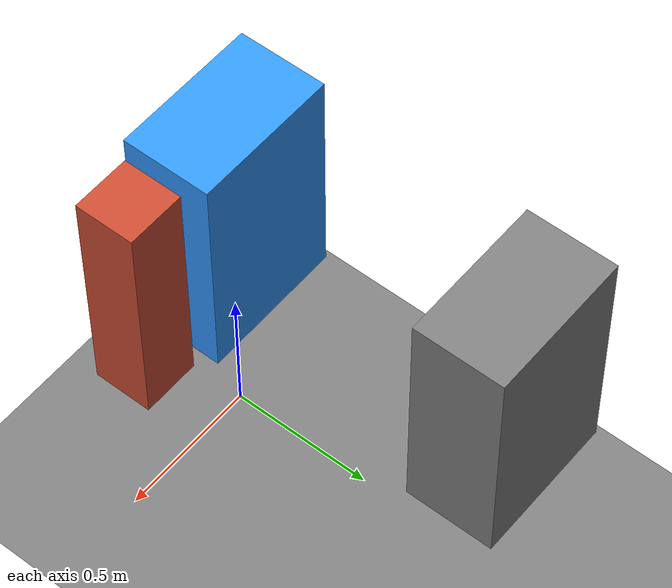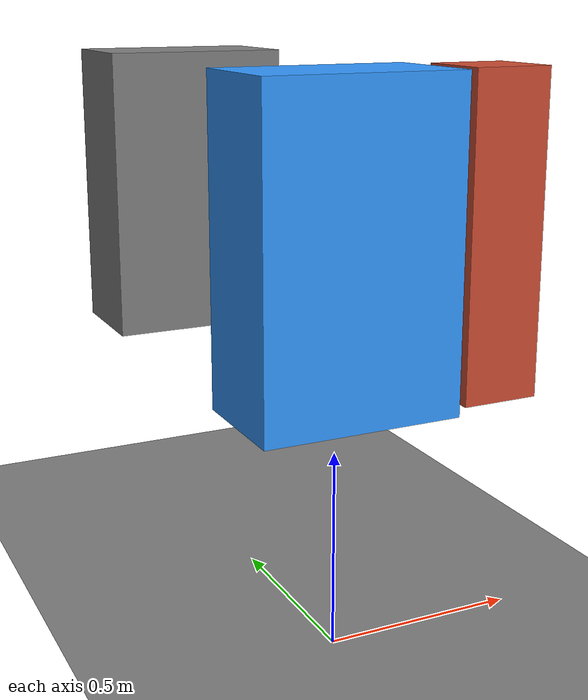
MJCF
<mujoco>
    <option timestep = "0.05"/>

    <worldbody>
        <body name="torso" pos="0 0 1">

            <geom
                name="torso_geom1"
                type="box"
                size="0.25 0.15 0.4"
                rgba="0.2 0.6 1 1"
            />

            <body name = "arm" pos = "0.4 0 0">
                <joint name = "shoulder"
                    type = "hinge"
                    axis = "0 1 0"
                    pos = "0 0 0"
                    range = "-90 90"
                />
                <!-- Axis along which the shoulder rotates-->

                <geom name = "arm_geom"
                    type = "box"
                    size = "0.1 0.1 0.4"
                    rgba = "0.8 0.3 0.2 1"
                />
            </body>

        </body>
        <geom
            name = "floor"
            type = "plane"
            size = "10 10 0.1"/>

        <body name = "torso_sec" pos = "0 1 1" >
            <geom
                name = "torso_geom"
                type = "box"
                size = "0.25 0.15 0.4"
            />
        </body>
    </worldbody>

    <actuator>
        <position
            name = "shoulder_motor"
            joint = "shoulder"
            kp = "20"
        />
    </actuator>
</mujoco>
